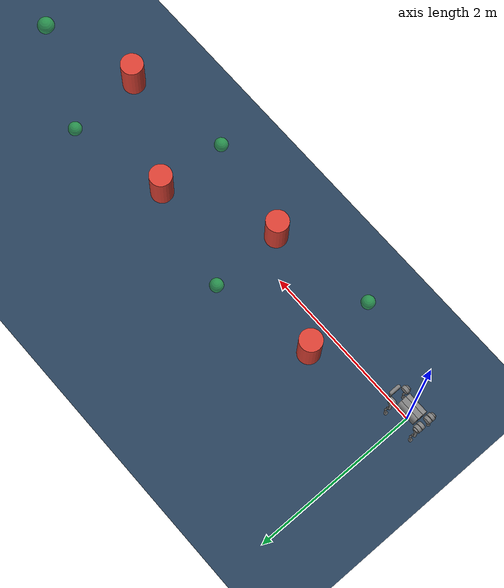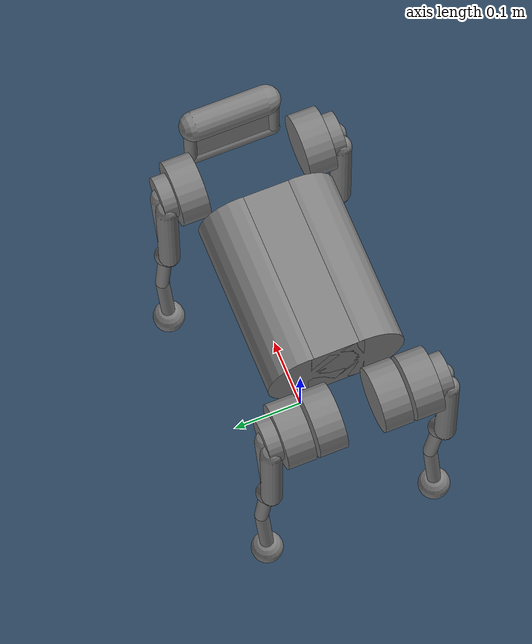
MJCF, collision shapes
<mujoco model="go1 obstacles scene">
  <include file="go1.xml"/>

  <statistic center="2 0 0.1" extent="6"/>

  <visual>
    <headlight diffuse="0.6 0.6 0.6" ambient="0.3 0.3 0.3" specular="0 0 0"/>
    <rgba haze="0.15 0.25 0.35 1"/>
    <global azimuth="120" elevation="-25" offwidth="1280" offheight="720"/>
  </visual>

  <asset>
    <texture type="skybox" builtin="gradient" rgb1="0.3 0.5 0.7" rgb2="0 0 0"
             width="512" height="3072"/>
    <texture type="2d" name="groundplane" builtin="checker" mark="edge"
             rgb1="0.2 0.3 0.4" rgb2="0.1 0.2 0.3" markrgb="0.8 0.8 0.8"
             width="300" height="300"/>
    <material name="groundplane" texture="groundplane" texuniform="true"
              texrepeat="5 5" reflectance="0.2"/>
    <material name="obstacle" rgba="0.85 0.25 0.20 1"/>
    <material name="waypoint" rgba="0.20 0.80 0.30 0.6"/>
  </asset>

  <worldbody>
    <light pos="2 0 3" dir="0 0 -1" directional="true"/>
    <geom name="floor" size="0 0 0.05" type="plane" material="groundplane"/>

    <!-- Slalom obstacles. -->
    <geom name="obs1" type="cylinder" pos="1.2  0.30 0.25" size="0.13 0.25"
          material="obstacle"/>
    <geom name="obs2" type="cylinder" pos="2.4 -0.30 0.25" size="0.13 0.25"
          material="obstacle"/>
    <geom name="obs3" type="cylinder" pos="3.6  0.30 0.25" size="0.13 0.25"
          material="obstacle"/>
    <geom name="obs4" type="cylinder" pos="4.8 -0.30 0.25" size="0.13 0.25"
          material="obstacle"/>

    <!-- Waypoint markers (visual only). -->
    <site name="wp1" pos="1.2 -0.55 0.02" size="0.08" type="sphere" material="waypoint"/>
    <site name="wp2" pos="2.4  0.55 0.02" size="0.08" type="sphere" material="waypoint"/>
    <site name="wp3" pos="3.6 -0.55 0.02" size="0.08" type="sphere" material="waypoint"/>
    <site name="wp4" pos="4.8  0.55 0.02" size="0.08" type="sphere" material="waypoint"/>
    <site name="wp5" pos="6.0  0.00 0.02" size="0.10" type="sphere" material="waypoint"/>
  </worldbody>
</mujoco>

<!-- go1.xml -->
<mujoco model="go1">
  <compiler angle="radian" meshdir="assets" autolimits="true"/>

  <option cone="elliptic" impratio="100"/>

  <default>
    <default class="go1">
      <geom friction="0.6" margin="0.001" condim="1"/>
      <joint axis="0 1 0" damping="2" armature="0.01" frictionloss="0.2"/>
      <position kp="100" forcerange="-23.7 23.7"/>
      <default class="abduction">
        <joint axis="1 0 0" damping="1" range="-0.863 0.863"/>
        <position ctrlrange="-0.863 0.863"/>
      </default>
      <default class="hip">
        <joint range="-0.686 4.501"/>
        <position ctrlrange="-0.686 4.501"/>
      </default>
      <default class="knee">
        <joint range="-2.818 -0.888"/>
        <position forcerange="-35.55 35.55" ctrlrange="-2.818 -0.888"/>
      </default>
      <default class="visual">
        <geom type="mesh" contype="0" conaffinity="0" group="2" material="dark"/>
      </default>
      <default class="collision">
        <geom group="3" type="capsule"/>
        <default class="hip_left1">
          <geom size="0.046 0.02" pos="0 0.045 0" quat="1 1 0 0" type="cylinder"/>
        </default>
        <default class="hip_left2">
          <geom size="0.031 0.02" pos="0 0.065 0" quat="1 1 0 0" type="cylinder"/>
        </default>
        <default class="hip_left3">
          <geom size="0.046 0.02" quat="1 1 0 0" type="cylinder"/>
        </default>
        <default class="hip_right1">
          <geom size="0.046 0.02" pos="0 -0.045 0" quat="1 1 0 0" type="cylinder"/>
        </default>
        <default class="hip_right2">
          <geom size="0.031 0.02" pos="0 -0.065 0" quat="1 1 0 0" type="cylinder"/>
        </default>
        <default class="hip_right3">
          <geom size="0.046 0.02" quat="1 1 0 0" type="cylinder"/>
        </default>
        <default class="thigh1">
          <geom size="0.015" fromto="-0.02 0 0 -0.02 0 -0.16"/>
        </default>
        <default class="thigh2">
          <geom size="0.015" fromto="0 0 0 -0.02 0 -0.1"/>
        </default>
        <default class="thigh3">
          <geom size="0.015" fromto="-0.02 0 -0.16 0 0 -0.2"/>
        </default>
        <default class="calf1">
          <geom size="0.01" fromto="0 0 0 0.02 0 -0.13"/>
        </default>
        <default class="calf2">
          <geom size="0.01" fromto="0.02 0 -0.13 0 0 -0.2"/>
        </default>
        <default class="foot">
          <geom type="sphere" size="0.023" pos="0 0 -0.213" priority="1" solimp="0.015 1 0.031" condim="6"
            friction="0.8 0.02 0.01"/>
        </default>
      </default>
    </default>
  </default>

  <asset>
    <material name="dark" rgba="0.1 0.1 0.1 1"/>
    <mesh class="go1" file="trunk.stl"/>
    <mesh class="go1" file="hip.stl"/>
    <mesh class="go1" file="thigh_mirror.stl"/>
    <mesh class="go1" file="calf.stl"/>
    <mesh class="go1" file="thigh.stl"/>
  </asset>

  <worldbody>
    <light name="spotlight" mode="targetbodycom" target="trunk" pos="0 -1 2"/>
    <body name="trunk" pos="0 0 0.445" childclass="go1">
      <camera name="tracking" mode="trackcom" pos="0 -1 0.8" xyaxes="1 0 0 0 1 1"/>
      <site name="head" pos="0.3 0 0" rgba="1 0 0 1" size="0.02" group="5"/>
      <inertial pos="0.0223 0.002 -0.0005" quat="-0.00342088 0.705204 0.000106698 0.708996" mass="5.204"
        diaginertia="0.0716565 0.0630105 0.0168101"/>
      <freejoint/>
      <geom class="visual" mesh="trunk"/>
      <geom class="collision" size="0.125 0.04 0.057" type="box"/>
      <geom class="collision" quat="1 0 1 0" pos="0 -0.04 0" size="0.058 0.125" type="cylinder"/>
      <geom class="collision" quat="1 0 1 0" pos="0 +0.04 0" size="0.058 0.125" type="cylinder"/>
      <geom class="collision" pos="0.25 0 0" size="0.005 0.06 0.05" type="box"/>
      <geom class="collision" pos="0.25 0.06 -0.01" size="0.009 0.035"/>
      <geom class="collision" pos="0.25 -0.06 -0.01" size="0.009 0.035"/>
      <geom class="collision" pos="0.25 0 -0.05" size="0.01 0.06" quat="1 1 0 0"/>
      <geom class="collision" pos="0.255 0 0.0355" size="0.021 0.052" quat="1 1 0 0"/>
      <site name="imu" pos="0 0 0"/>
      <body name="FL_hip" pos="0.1881 0.04675 0">
        <inertial pos="-0.0049166 -0.00762615 -8.865e-05" quat="0.482891 0.495027 0.514169 0.507341" mass="0.68"
          diaginertia="0.000734064 0.000468438 0.000398719"/>
        <joint class="abduction" name="FL_hip_joint"/>
        <geom class="visual" mesh="hip"/>
        <geom class="hip_left1"/>
        <geom class="hip_left2"/>
        <body name="FL_thigh" pos="0 0.08 0">
          <inertial pos="-0.00304722 -0.019315 -0.0305004" quat="0.753383 0.0775126 -0.0272313 0.65243" mass="1.009"
            diaginertia="0.00478717 0.00460903 0.000709268"/>
          <joint class="hip" name="FL_thigh_joint"/>
          <geom class="visual" mesh="thigh"/>
          <geom class="thigh1"/>
          <geom class="thigh2"/>
          <geom class="thigh3"/>
          <body name="FL_calf" pos="0 0 -0.213">
            <inertial pos="0.00429862 0.000976676 -0.146197" quat="0.691246 0.00357467 0.00511118 0.722592"
              mass="0.195862" diaginertia="0.00149767 0.00148468 3.58427e-05"/>
            <joint class="knee" name="FL_calf_joint"/>
            <geom class="visual" mesh="calf"/>
            <geom class="calf1"/>
            <geom class="calf2"/>
            <geom name="FL" class="foot"/>
            <site name="FL" pos="0 0 -0.213" type="sphere" size="0.023" group="5"/>
          </body>
        </body>
      </body>
      <body name="FR_hip" pos="0.1881 -0.04675 0">
        <inertial pos="-0.0049166 0.00762615 -8.865e-05" quat="0.507341 0.514169 0.495027 0.482891" mass="0.68"
          diaginertia="0.000734064 0.000468438 0.000398719"/>
        <joint class="abduction" name="FR_hip_joint"/>
        <geom class="visual" mesh="hip" quat="1 0 0 0"/>
        <geom class="hip_right1"/>
        <geom class="hip_right2"/>
        <body name="FR_thigh" pos="0 -0.08 0">
          <inertial pos="-0.00304722 0.019315 -0.0305004" quat="0.65243 -0.0272313 0.0775126 0.753383" mass="1.009"
            diaginertia="0.00478717 0.00460903 0.000709268"/>
          <joint class="hip" name="FR_thigh_joint"/>
          <geom class="visual" mesh="thigh_mirror"/>
          <geom class="thigh1"/>
          <geom class="thigh2"/>
          <geom class="thigh3"/>
          <body name="FR_calf" pos="0 0 -0.213">
            <inertial pos="0.00429862 0.000976676 -0.146197" quat="0.691246 0.00357467 0.00511118 0.722592"
              mass="0.195862" diaginertia="0.00149767 0.00148468 3.58427e-05"/>
            <joint class="knee" name="FR_calf_joint"/>
            <geom class="visual" mesh="calf"/>
            <geom class="calf1"/>
            <geom class="calf2"/>
            <geom name="FR" class="foot"/>
            <site name="FR" pos="0 0 -0.213" type="sphere" size="0.023" group="5"/>
          </body>
        </body>
      </body>
      <body name="RL_hip" pos="-0.1881 0.04675 0">
        <inertial pos="0.0049166 -0.00762615 -8.865e-05" quat="0.514169 0.507341 0.482891 0.495027" mass="0.68"
          diaginertia="0.000734064 0.000468438 0.000398719"/>
        <joint class="abduction" name="RL_hip_joint"/>
        <geom class="visual" quat="0 0 1 0" mesh="hip"/>
        <geom class="hip_left1"/>
        <geom class="hip_left2"/>
        <geom class="hip_left3"/>
        <body name="RL_thigh" pos="0 0.08 0">
          <inertial pos="-0.00304722 -0.019315 -0.0305004" quat="0.753383 0.0775126 -0.0272313 0.65243" mass="1.009"
            diaginertia="0.00478717 0.00460903 0.000709268"/>
          <joint class="hip" name="RL_thigh_joint"/>
          <geom class="visual" mesh="thigh"/>
          <geom class="thigh1"/>
          <geom class="thigh2"/>
          <geom class="thigh3"/>
          <body name="RL_calf" pos="0 0 -0.213">
            <inertial pos="0.00429862 0.000976676 -0.146197" quat="0.691246 0.00357467 0.00511118 0.722592"
              mass="0.195862" diaginertia="0.00149767 0.00148468 3.58427e-05"/>
            <joint class="knee" name="RL_calf_joint"/>
            <geom class="visual" mesh="calf"/>
            <geom class="calf1"/>
            <geom class="calf2"/>
            <geom name="RL" class="foot"/>
            <site name="RL" pos="0 0 -0.213" type="sphere" size="0.023" group="5"/>
          </body>
        </body>
      </body>
      <body name="RR_hip" pos="-0.1881 -0.04675 0">
        <inertial pos="0.0049166 0.00762615 -8.865e-05" quat="0.495027 0.482891 0.507341 0.514169" mass="0.68"
          diaginertia="0.000734064 0.000468438 0.000398719"/>
        <joint class="abduction" name="RR_hip_joint"/>
        <geom class="visual" quat="0 0 0 -1" mesh="hip"/>
        <geom class="hip_right1"/>
        <geom class="hip_right2"/>
        <geom class="hip_right3"/>
        <body name="RR_thigh" pos="0 -0.08 0">
          <inertial pos="-0.00304722 0.019315 -0.0305004" quat="0.65243 -0.0272313 0.0775126 0.753383" mass="1.009"
            diaginertia="0.00478717 0.00460903 0.000709268"/>
          <joint class="hip" name="RR_thigh_joint"/>
          <geom class="visual" mesh="thigh_mirror"/>
          <geom class="thigh1"/>
          <geom class="thigh2"/>
          <geom class="thigh3"/>
          <body name="RR_calf" pos="0 0 -0.213">
            <inertial pos="0.00429862 0.000976676 -0.146197" quat="0.691246 0.00357467 0.00511118 0.722592"
              mass="0.195862" diaginertia="0.00149767 0.00148468 3.58427e-05"/>
            <joint class="knee" name="RR_calf_joint"/>
            <geom class="visual" mesh="calf"/>
            <geom class="calf1"/>
            <geom class="calf2"/>
            <geom name="RR" class="foot"/>
            <site name="RR" pos="0 0 -0.213" type="sphere" size="0.023" group="5"/>
          </body>
        </body>
      </body>
    </body>
  </worldbody>
  <actuator>
        <motor name="FL_hip"    gear="1" joint="FL_hip_joint"   ctrllimited="true" ctrlrange="-33.5 33.5"/>
        <motor name="FL_thigh"  gear="1" joint="FL_thigh_joint" ctrllimited="true" ctrlrange="-33.5 33.5"/>
        <motor name="FL_calf"   gear="1" joint="FL_calf_joint"  ctrllimited="true" ctrlrange="-33.5 33.5"/>
        <motor name="FR_hip"    gear="1" joint="FR_hip_joint"   ctrllimited="true" ctrlrange="-33.5 33.5"/>
        <motor name="FR_thigh"  gear="1" joint="FR_thigh_joint" ctrllimited="true" ctrlrange="-33.5 33.5"/>
        <motor name="FR_calf"   gear="1" joint="FR_calf_joint"  ctrllimited="true" ctrlrange="-33.5 33.5"/>
        <motor name="RL_hip"    gear="1" joint="RL_hip_joint"   ctrllimited="true" ctrlrange="-33.5 33.5"/>
        <motor name="RL_thigh"  gear="1" joint="RL_thigh_joint" ctrllimited="true" ctrlrange="-33.5 33.5"/>
        <motor name="RL_calf"   gear="1" joint="RL_calf_joint"  ctrllimited="true" ctrlrange="-33.5 33.5"/>
        <motor name="RR_hip"    gear="1" joint="RR_hip_joint"   ctrllimited="true" ctrlrange="-33.5 33.5"/>
        <motor name="RR_thigh"  gear="1" joint="RR_thigh_joint" ctrllimited="true" ctrlrange="-33.5 33.5"/>
        <motor name="RR_calf"   gear="1" joint="RR_calf_joint"  ctrllimited="true" ctrlrange="-33.5 33.5"/>
  </actuator>
  <keyframe>
    <key name="stand" qpos="0 0 0.27 1 0 0 0 0 0.9 -1.8 0 0.9 -1.8 0 0.9 -1.8 0 0.9 -1.8"
      ctrl="0 0 0 0 0 0 0 0 0 0 0 0"/>
    <key name="ground" qpos="0 0 0.08 1 0 0 0 0.073 1.34 -2.83 0.073 1.34 -2.83 0.073 1.34 -2.83 0.073 1.34 -2.83"
      ctrl="0 0 0 0 0 0 0 0 0 0 0 0"/>
  </keyframe>

</mujoco>
